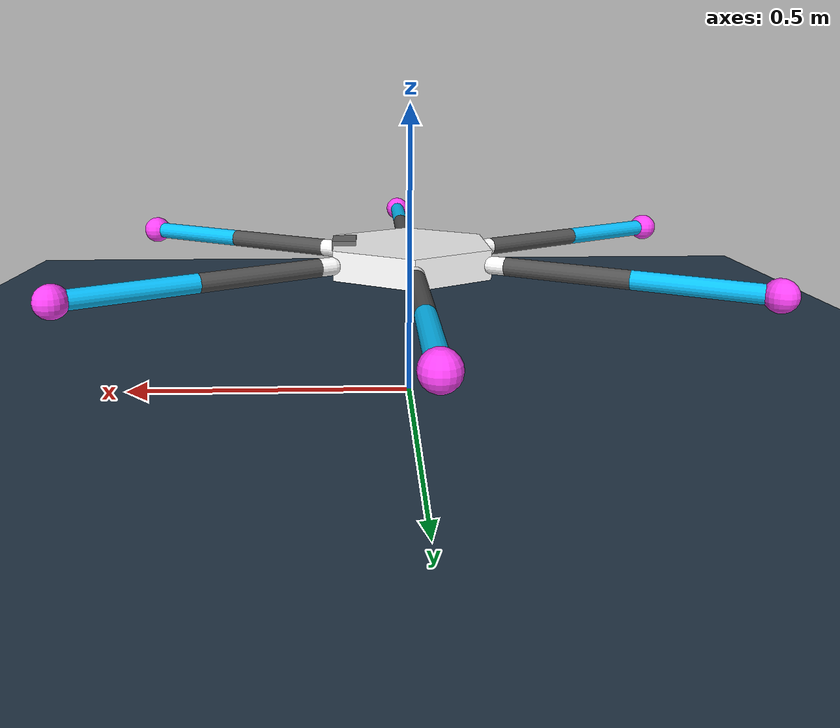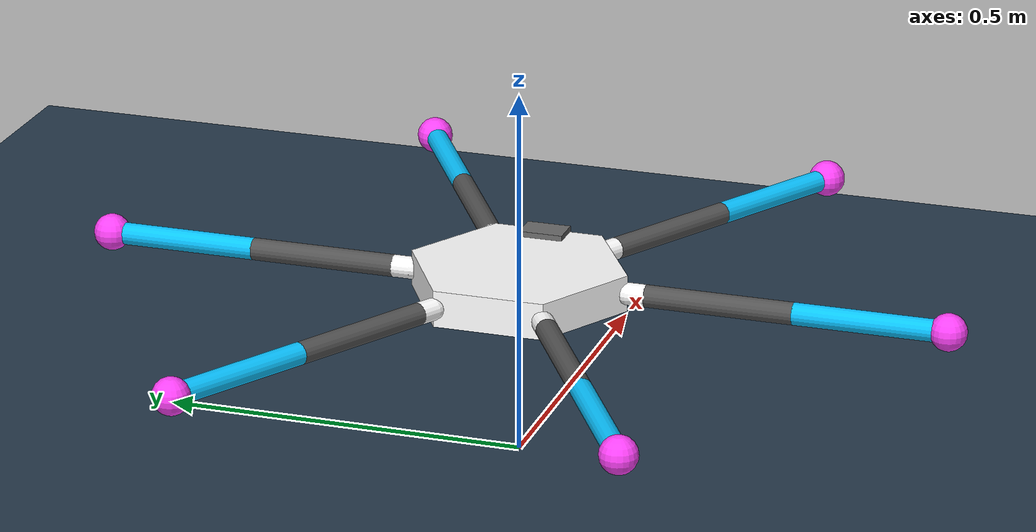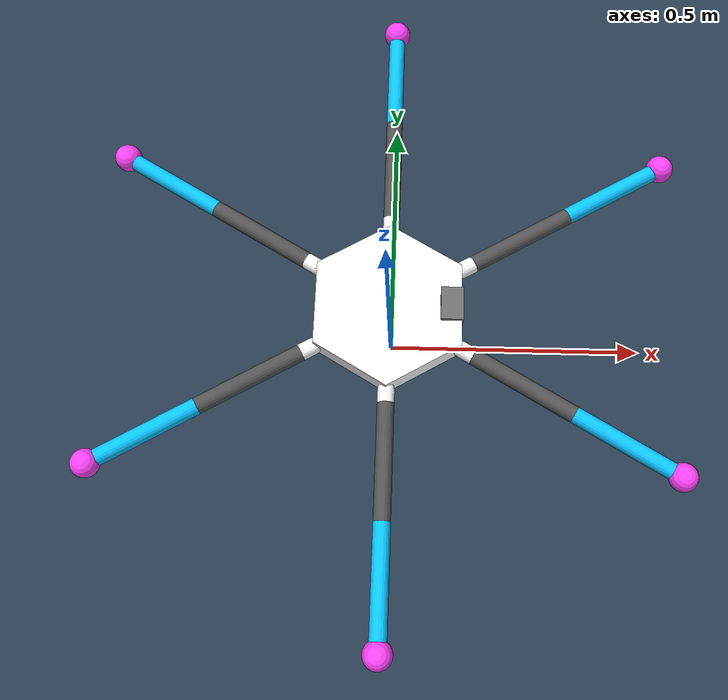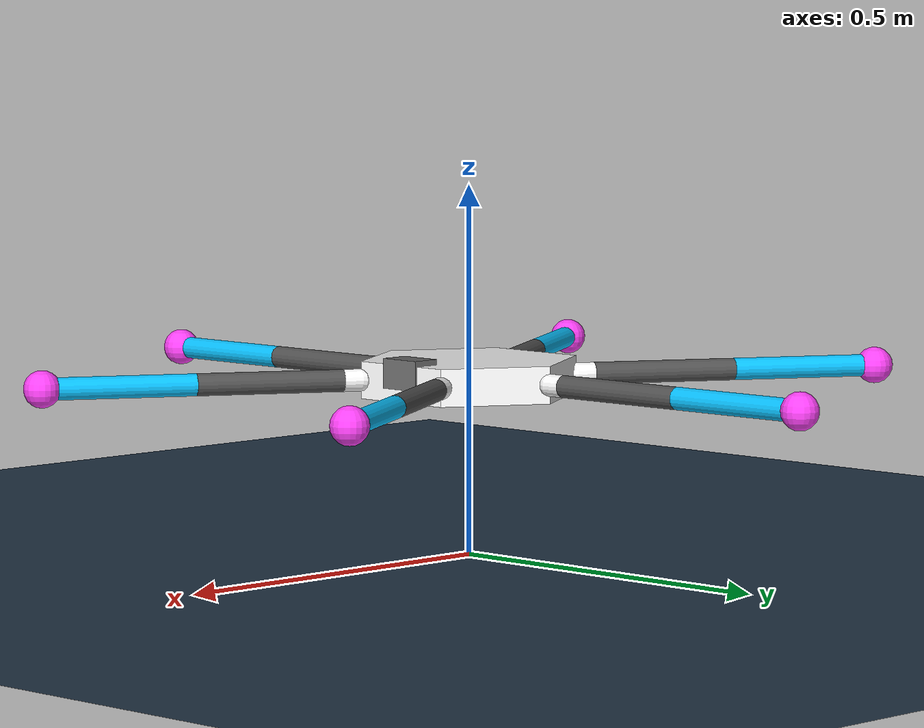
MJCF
<mujoco model="hexapod">
  <compiler angle="degree" autolimits="true"/>
  <option timestep="0.004" integrator="implicitfast" iterations="10" ls_iterations="8"/>

  <default>
    <geom density="660" friction="1.0 0.5 0.5" contype="0" conaffinity="1"/>
    <default class="hexapod">
      <joint type="hinge" armature="0.008" damping="0.4" frictionloss="0.02"/>
      <geom type="capsule" size="0.015"/>
      <position kp="200" kv="6" forcerange="-8 8"/>
      <default class="coxa">
        <joint axis="0 0 1" range="-45 45"/>
        <geom material="coxa"/>
      </default>
      <default class="femur">
        <joint axis="0 1 0" range="-80 75"/>
        <geom material="femur"/>
      </default>
      <default class="tibia">
        <joint axis="0 1 0" range="0 155"/>
        <geom material="tibia"/>
      </default>
    </default>
  </default>

  <asset>
    <material name="base"  rgba="1 1 1 1"/>
    <material name="head"  rgba="0.419608 0.419608 0.419608 1"/>
    <material name="coxa"  rgba="1 1 1 1"/>
    <material name="femur" rgba="0.321569 0.321569 0.321569 1"/>
    <material name="tibia" rgba="0.0392157 0.760784 1 1"/>
    <material name="foot"  rgba="1 0.258824 0.976471 1"/>

    <texture type="skybox" builtin="gradient" rgb1="0.3 0.5 0.7" rgb2="0 0 0" width="512" height="512"/>
    <texture name="grid" type="2d" builtin="checker" rgb1="0.2 0.3 0.4" rgb2="0.1 0.15 0.2"
             width="512" height="512"/>
    <material name="grid" texture="grid" texrepeat="10 10" reflectance="0.2"/>
    <mesh name="hexbody" vertex="
       0.12990  0.07500  0.02500
       0.00000  0.15000  0.02500
      -0.12990  0.07500  0.02500
      -0.12990 -0.07500  0.02500
      -0.00000 -0.15000  0.02500
       0.12990 -0.07500  0.02500
       0.12990  0.07500 -0.02500
       0.00000  0.15000 -0.02500
      -0.12990  0.07500 -0.02500
      -0.12990 -0.07500 -0.02500
      -0.00000 -0.15000 -0.02500
       0.12990 -0.07500 -0.02500"/>
  </asset>

  <worldbody>
    <light pos="0 0 2.0" dir="0 0 -1" diffuse="0.8 0.8 0.8"/>
    <geom name="floor" type="plane" size="0 0 0.05" material="grid" contype="1" conaffinity="1"
          priority="1" friction="2 0.5 0.5"/>

    <body name="base" pos="0 0 0.241185">
      <freejoint name="root"/>
      <geom name="base" type="mesh" mesh="hexbody" material="base" density="2770"/>
      <geom name="head" type="box" pos="0.1125 0 0.0125" size="0.02 0.03 0.02" material="head"/>

      <!-- 6 legs, one per corner. Index -> corner:
             0 = FL (30)   1 = ML (90)   2 = BL (150)
             3 = BR (210)  4 = MR (270)  5 = FR (330) -->
      <body name="coxa0" pos="0.129904 0.075 0" euler="0 0 30" childclass="hexapod">
        <joint name="coxa0" class="coxa"/>
        <geom class="coxa" fromto="0 0 0 0.025 0 0"/>
        <body name="femur0" pos="0.025 0 0">
          <joint name="femur0" class="femur"/>
          <geom class="femur" fromto="0 0 0 0.2 0 0"/>
          <body name="tibia0" pos="0.2 0 0">
            <joint name="tibia0" class="tibia"/>
            <geom class="tibia" fromto="0 0 0 0.206 0 0"/>
            <geom name="foot0" type="sphere" pos="0.206 0 0" size="0.025" density="1810" material="foot"/>
            <site name="foot0" pos="0.206 0 0" size="0.012"/>
          </body>
        </body>
      </body>
      <body name="coxa1" pos="9.18485e-18 0.15 0" euler="0 0 90" childclass="hexapod">
        <joint name="coxa1" class="coxa"/>
        <geom class="coxa" fromto="0 0 0 0.025 0 0"/>
        <body name="femur1" pos="0.025 0 0">
          <joint name="femur1" class="femur"/>
          <geom class="femur" fromto="0 0 0 0.2 0 0"/>
          <body name="tibia1" pos="0.2 0 0">
            <joint name="tibia1" class="tibia"/>
            <geom class="tibia" fromto="0 0 0 0.206 0 0"/>
            <geom name="foot1" type="sphere" pos="0.206 0 0" size="0.025" density="1810" material="foot"/>
            <site name="foot1" pos="0.206 0 0" size="0.012"/>
          </body>
        </body>
      </body>
      <body name="coxa2" pos="-0.129904 0.075 0" euler="0 0 150" childclass="hexapod">
        <joint name="coxa2" class="coxa"/>
        <geom class="coxa" fromto="0 0 0 0.025 0 0"/>
        <body name="femur2" pos="0.025 0 0">
          <joint name="femur2" class="femur"/>
          <geom class="femur" fromto="0 0 0 0.2 0 0"/>
          <body name="tibia2" pos="0.2 0 0">
            <joint name="tibia2" class="tibia"/>
            <geom class="tibia" fromto="0 0 0 0.206 0 0"/>
            <geom name="foot2" type="sphere" pos="0.206 0 0" size="0.025" density="1810" material="foot"/>
            <site name="foot2" pos="0.206 0 0" size="0.012"/>
          </body>
        </body>
      </body>
      <body name="coxa3" pos="-0.129904 -0.075 0" euler="0 0 210" childclass="hexapod">
        <joint name="coxa3" class="coxa"/>
        <geom class="coxa" fromto="0 0 0 0.025 0 0"/>
        <body name="femur3" pos="0.025 0 0">
          <joint name="femur3" class="femur"/>
          <geom class="femur" fromto="0 0 0 0.2 0 0"/>
          <body name="tibia3" pos="0.2 0 0">
            <joint name="tibia3" class="tibia"/>
            <geom class="tibia" fromto="0 0 0 0.206 0 0"/>
            <geom name="foot3" type="sphere" pos="0.206 0 0" size="0.025" density="1810" material="foot"/>
            <site name="foot3" pos="0.206 0 0" size="0.012"/>
          </body>
        </body>
      </body>
      <body name="coxa4" pos="-2.75546e-17 -0.15 0" euler="0 0 270" childclass="hexapod">
        <joint name="coxa4" class="coxa"/>
        <geom class="coxa" fromto="0 0 0 0.025 0 0"/>
        <body name="femur4" pos="0.025 0 0">
          <joint name="femur4" class="femur"/>
          <geom class="femur" fromto="0 0 0 0.2 0 0"/>
          <body name="tibia4" pos="0.2 0 0">
            <joint name="tibia4" class="tibia"/>
            <geom class="tibia" fromto="0 0 0 0.206 0 0"/>
            <geom name="foot4" type="sphere" pos="0.206 0 0" size="0.025" density="1810" material="foot"/>
            <site name="foot4" pos="0.206 0 0" size="0.012"/>
          </body>
        </body>
      </body>
      <body name="coxa5" pos="0.129904 -0.075 0" euler="0 0 330" childclass="hexapod">
        <joint name="coxa5" class="coxa"/>
        <geom class="coxa" fromto="0 0 0 0.025 0 0"/>
        <body name="femur5" pos="0.025 0 0">
          <joint name="femur5" class="femur"/>
          <geom class="femur" fromto="0 0 0 0.2 0 0"/>
          <body name="tibia5" pos="0.2 0 0">
            <joint name="tibia5" class="tibia"/>
            <geom class="tibia" fromto="0 0 0 0.206 0 0"/>
            <geom name="foot5" type="sphere" pos="0.206 0 0" size="0.025" density="1810" material="foot"/>
            <site name="foot5" pos="0.206 0 0" size="0.012"/>
          </body>
        </body>
      </body>
    </body>
  </worldbody>

  <actuator>
    <position name="coxa0" joint="coxa0" class="hexapod"/>
    <position name="femur0" joint="femur0" class="hexapod"/>
    <position name="tibia0" joint="tibia0" class="hexapod"/>
    <position name="coxa1" joint="coxa1" class="hexapod"/>
    <position name="femur1" joint="femur1" class="hexapod"/>
    <position name="tibia1" joint="tibia1" class="hexapod"/>
    <position name="coxa2" joint="coxa2" class="hexapod"/>
    <position name="femur2" joint="femur2" class="hexapod"/>
    <position name="tibia2" joint="tibia2" class="hexapod"/>
    <position name="coxa3" joint="coxa3" class="hexapod"/>
    <position name="femur3" joint="femur3" class="hexapod"/>
    <position name="tibia3" joint="tibia3" class="hexapod"/>
    <position name="coxa4" joint="coxa4" class="hexapod"/>
    <position name="femur4" joint="femur4" class="hexapod"/>
    <position name="tibia4" joint="tibia4" class="hexapod"/>
    <position name="coxa5" joint="coxa5" class="hexapod"/>
    <position name="femur5" joint="femur5" class="hexapod"/>
    <position name="tibia5" joint="tibia5" class="hexapod"/>
  </actuator>

  <keyframe>
    <key name="home" qpos="0 0 0.241185 1 0 0 0  0 0.0523599 1.46608  0 0.0523599 1.46608  0 0.0523599 1.46608  0 0.0523599 1.46608  0 0.0523599 1.46608  0 0.0523599 1.46608"/>
  </keyframe>
</mujoco>
